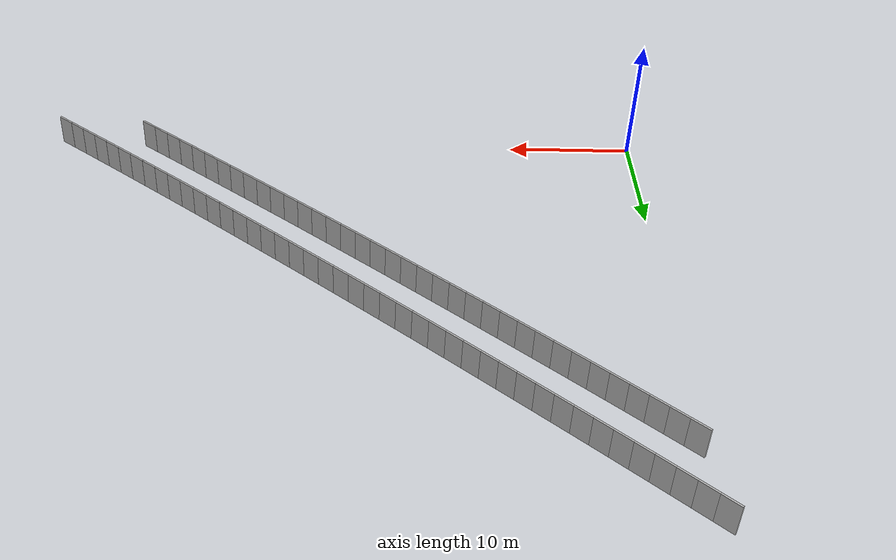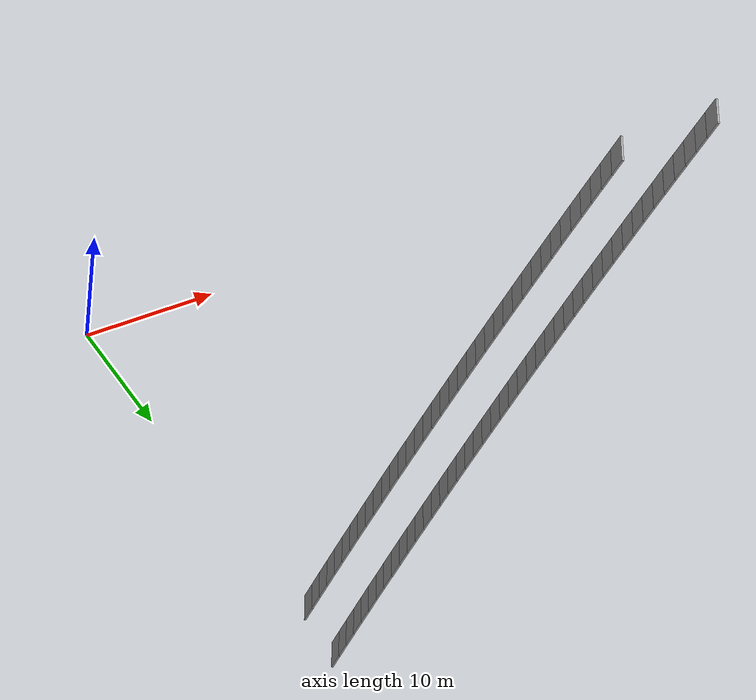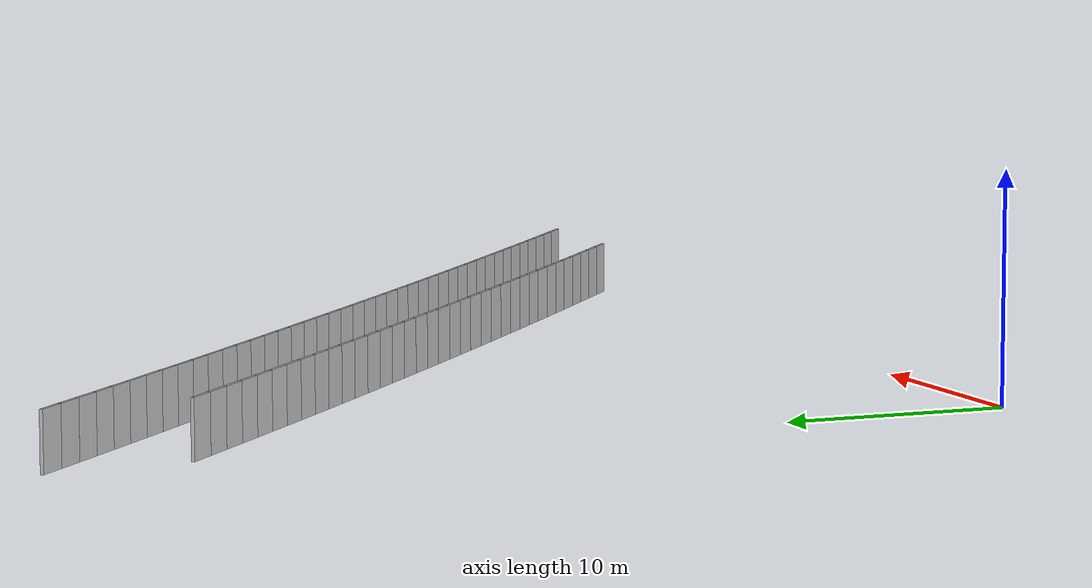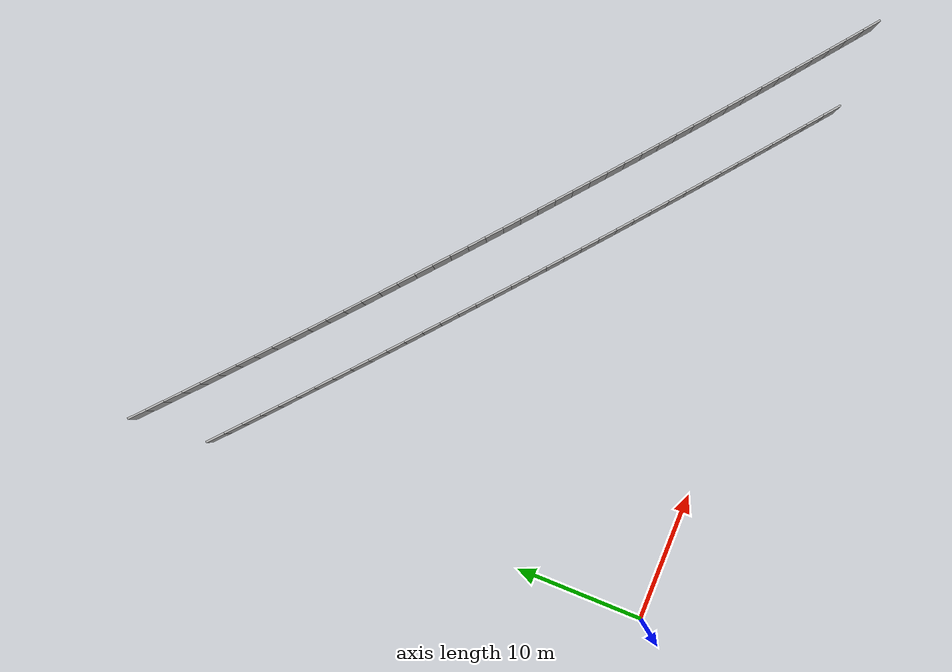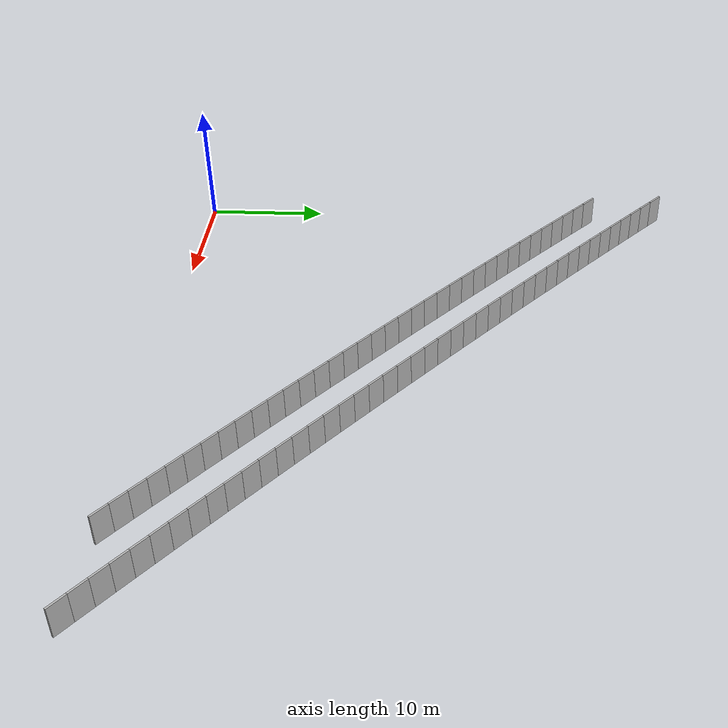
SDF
<?xml version="1.0" ?>
<sdf version="1.6">
  <model name="sps_1008">
    <pose frame="">0 0 0 0 -0 0</pose>
    <static>1</static>
    <self_collide>0</self_collide>
    <allow_auto_disable>0</allow_auto_disable>
    <link name="Wall8548">
      <kinematic>0</kinematic>
      <gravity>1</gravity>
      <self_collide>0</self_collide>
      <collision name="collision">
        <geometry>
          <box>
            <size>1.49907 0.15 2.5</size>
          </box>
        </geometry>
        <pose frame="">0 0 0 0 -0 0</pose>
      </collision>
      <visual name="visual">
        <geometry>
          <box>
            <size>1.49907 0.15 2.5</size>
          </box>
        </geometry>
        <pose frame="">0 0 0 0 -0 0</pose>
        <cast_shadows>1</cast_shadows>
        <transparency>0.0</transparency>
      </visual>
      <pose frame="">0.953452 34.6064 1.25 0 0 -0.729026</pose>
    </link>
    <link name="Wall8549">
      <kinematic>0</kinematic>
      <gravity>1</gravity>
      <self_collide>0</self_collide>
      <collision name="collision">
        <geometry>
          <box>
            <size>1.49885 0.15 2.5</size>
          </box>
        </geometry>
        <pose frame="">0 0 0 0 -0 0</pose>
      </collision>
      <visual name="visual">
        <geometry>
          <box>
            <size>1.49885 0.15 2.5</size>
          </box>
        </geometry>
        <pose frame="">0 0 0 0 -0 0</pose>
        <cast_shadows>1</cast_shadows>
        <transparency>0.0</transparency>
      </visual>
      <pose frame="">2.07217 33.6087 1.25 0 0 -0.727518</pose>
    </link>
    <link name="Wall8550">
      <kinematic>0</kinematic>
      <gravity>1</gravity>
      <self_collide>0</self_collide>
      <collision name="collision">
        <geometry>
          <box>
            <size>1.49905 0.15 2.5</size>
          </box>
        </geometry>
        <pose frame="">0 0 0 0 -0 0</pose>
      </collision>
      <visual name="visual">
        <geometry>
          <box>
            <size>1.49905 0.15 2.5</size>
          </box>
        </geometry>
        <pose frame="">0 0 0 0 -0 0</pose>
        <cast_shadows>1</cast_shadows>
        <transparency>0.0</transparency>
      </visual>
      <pose frame="">3.19247 32.6128 1.25 0 0 -0.725824</pose>
    </link>
    <link name="Wall8551">
      <kinematic>0</kinematic>
      <gravity>1</gravity>
      <self_collide>0</self_collide>
      <collision name="collision">
        <geometry>
          <box>
            <size>1.49888 0.15 2.5</size>
          </box>
        </geometry>
        <pose frame="">0 0 0 0 -0 0</pose>
      </collision>
      <visual name="visual">
        <geometry>
          <box>
            <size>1.49888 0.15 2.5</size>
          </box>
        </geometry>
        <pose frame="">0 0 0 0 -0 0</pose>
        <cast_shadows>1</cast_shadows>
        <transparency>0.0</transparency>
      </visual>
      <pose frame="">4.31435 31.6187 1.25 0 0 -0.724346</pose>
    </link>
    <link name="Wall8552">
      <kinematic>0</kinematic>
      <gravity>1</gravity>
      <self_collide>0</self_collide>
      <collision name="collision">
        <geometry>
          <box>
            <size>1.4989 0.15 2.5</size>
          </box>
        </geometry>
        <pose frame="">0 0 0 0 -0 0</pose>
      </collision>
      <visual name="visual">
        <geometry>
          <box>
            <size>1.4989 0.15 2.5</size>
          </box>
        </geometry>
        <pose frame="">0 0 0 0 -0 0</pose>
        <cast_shadows>1</cast_shadows>
        <transparency>0.0</transparency>
      </visual>
      <pose frame="">5.43774 30.6264 1.25 0 0 -0.722703</pose>
    </link>
    <link name="Wall8553">
      <kinematic>0</kinematic>
      <gravity>1</gravity>
      <self_collide>0</self_collide>
      <collision name="collision">
        <geometry>
          <box>
            <size>1.49904 0.15 2.5</size>
          </box>
        </geometry>
        <pose frame="">0 0 0 0 -0 0</pose>
      </collision>
      <visual name="visual">
        <geometry>
          <box>
            <size>1.49904 0.15 2.5</size>
          </box>
        </geometry>
        <pose frame="">0 0 0 0 -0 0</pose>
        <cast_shadows>1</cast_shadows>
        <transparency>0.0</transparency>
      </visual>
      <pose frame="">6.56274 29.6358 1.25 0 0 -0.721209</pose>
    </link>
    <link name="Wall8554">
      <kinematic>0</kinematic>
      <gravity>1</gravity>
      <self_collide>0</self_collide>
      <collision name="collision">
        <geometry>
          <box>
            <size>1.49877 0.15 2.5</size>
          </box>
        </geometry>
        <pose frame="">0 0 0 0 -0 0</pose>
      </collision>
      <visual name="visual">
        <geometry>
          <box>
            <size>1.49877 0.15 2.5</size>
          </box>
        </geometry>
        <pose frame="">0 0 0 0 -0 0</pose>
        <cast_shadows>1</cast_shadows>
        <transparency>0.0</transparency>
      </visual>
      <pose frame="">7.68923 28.647 1.25 0 0 -0.719581</pose>
    </link>
    <link name="Wall8555">
      <kinematic>0</kinematic>
      <gravity>1</gravity>
      <self_collide>0</self_collide>
      <collision name="collision">
        <geometry>
          <box>
            <size>1.4991 0.15 2.5</size>
          </box>
        </geometry>
        <pose frame="">0 0 0 0 -0 0</pose>
      </collision>
      <visual name="visual">
        <geometry>
          <box>
            <size>1.4991 0.15 2.5</size>
          </box>
        </geometry>
        <pose frame="">0 0 0 0 -0 0</pose>
        <cast_shadows>1</cast_shadows>
        <transparency>0.0</transparency>
      </visual>
      <pose frame="">8.81734 27.66 1.25 0 0 -0.71798</pose>
    </link>
    <link name="Wall8556">
      <kinematic>0</kinematic>
      <gravity>1</gravity>
      <self_collide>0</self_collide>
      <collision name="collision">
        <geometry>
          <box>
            <size>1.49879 0.15 2.5</size>
          </box>
        </geometry>
        <pose frame="">0 0 0 0 -0 0</pose>
      </collision>
      <visual name="visual">
        <geometry>
          <box>
            <size>1.49879 0.15 2.5</size>
          </box>
        </geometry>
        <pose frame="">0 0 0 0 -0 0</pose>
        <cast_shadows>1</cast_shadows>
        <transparency>0.0</transparency>
      </visual>
      <pose frame="">9.94704 26.6748 1.25 0 0 -0.716378</pose>
    </link>
    <link name="Wall8557">
      <kinematic>0</kinematic>
      <gravity>1</gravity>
      <self_collide>0</self_collide>
      <collision name="collision">
        <geometry>
          <box>
            <size>1.49913 0.15 2.5</size>
          </box>
        </geometry>
        <pose frame="">0 0 0 0 -0 0</pose>
      </collision>
      <visual name="visual">
        <geometry>
          <box>
            <size>1.49913 0.15 2.5</size>
          </box>
        </geometry>
        <pose frame="">0 0 0 0 -0 0</pose>
        <cast_shadows>1</cast_shadows>
        <transparency>0.0</transparency>
      </visual>
      <pose frame="">11.0783 25.6914 1.25 0 0 -0.714778</pose>
    </link>
    <link name="Wall8558">
      <kinematic>0</kinematic>
      <gravity>1</gravity>
      <self_collide>0</self_collide>
      <collision name="collision">
        <geometry>
          <box>
            <size>1.49885 0.15 2.5</size>
          </box>
        </geometry>
        <pose frame="">0 0 0 0 -0 0</pose>
      </collision>
      <visual name="visual">
        <geometry>
          <box>
            <size>1.49885 0.15 2.5</size>
          </box>
        </geometry>
        <pose frame="">0 0 0 0 -0 0</pose>
        <cast_shadows>1</cast_shadows>
        <transparency>0.0</transparency>
      </visual>
      <pose frame="">12.2111 24.7097 1.25 0 0 -0.713321</pose>
    </link>
    <link name="Wall8559">
      <kinematic>0</kinematic>
      <gravity>1</gravity>
      <self_collide>0</self_collide>
      <collision name="collision">
        <geometry>
          <box>
            <size>1.49904 0.15 2.5</size>
          </box>
        </geometry>
        <pose frame="">0 0 0 0 -0 0</pose>
      </collision>
      <visual name="visual">
        <geometry>
          <box>
            <size>1.49904 0.15 2.5</size>
          </box>
        </geometry>
        <pose frame="">0 0 0 0 -0 0</pose>
        <cast_shadows>1</cast_shadows>
        <transparency>0.0</transparency>
      </visual>
      <pose frame="">13.3455 23.7298 1.25 0 0 -0.711656</pose>
    </link>
    <link name="Wall8560">
      <kinematic>0</kinematic>
      <gravity>1</gravity>
      <self_collide>0</self_collide>
      <collision name="collision">
        <geometry>
          <box>
            <size>1.49895 0.15 2.5</size>
          </box>
        </geometry>
        <pose frame="">0 0 0 0 -0 0</pose>
      </collision>
      <visual name="visual">
        <geometry>
          <box>
            <size>1.49895 0.15 2.5</size>
          </box>
        </geometry>
        <pose frame="">0 0 0 0 -0 0</pose>
        <cast_shadows>1</cast_shadows>
        <transparency>0.0</transparency>
      </visual>
      <pose frame="">14.4813 22.7517 1.25 0 0 -0.71015</pose>
    </link>
    <link name="Wall8561">
      <kinematic>0</kinematic>
      <gravity>1</gravity>
      <self_collide>0</self_collide>
      <collision name="collision">
        <geometry>
          <box>
            <size>1.49882 0.15 2.5</size>
          </box>
        </geometry>
        <pose frame="">0 0 0 0 -0 0</pose>
      </collision>
      <visual name="visual">
        <geometry>
          <box>
            <size>1.49882 0.15 2.5</size>
          </box>
        </geometry>
        <pose frame="">0 0 0 0 -0 0</pose>
        <cast_shadows>1</cast_shadows>
        <transparency>0.0</transparency>
      </visual>
      <pose frame="">15.6186 21.7754 1.25 0 0 -0.708613</pose>
    </link>
    <link name="Wall8562">
      <kinematic>0</kinematic>
      <gravity>1</gravity>
      <self_collide>0</self_collide>
      <collision name="collision">
        <geometry>
          <box>
            <size>1.4989 0.15 2.5</size>
          </box>
        </geometry>
        <pose frame="">0 0 0 0 -0 0</pose>
      </collision>
      <visual name="visual">
        <geometry>
          <box>
            <size>1.4989 0.15 2.5</size>
          </box>
        </geometry>
        <pose frame="">0 0 0 0 -0 0</pose>
        <cast_shadows>1</cast_shadows>
        <transparency>0.0</transparency>
      </visual>
      <pose frame="">16.7576 20.801 1.25 0 0 -0.706798</pose>
    </link>
    <link name="Wall8563">
      <kinematic>0</kinematic>
      <gravity>1</gravity>
      <self_collide>0</self_collide>
      <collision name="collision">
        <geometry>
          <box>
            <size>1.49903 0.15 2.5</size>
          </box>
        </geometry>
        <pose frame="">0 0 0 0 -0 0</pose>
      </collision>
      <visual name="visual">
        <geometry>
          <box>
            <size>1.49903 0.15 2.5</size>
          </box>
        </geometry>
        <pose frame="">0 0 0 0 -0 0</pose>
        <cast_shadows>1</cast_shadows>
        <transparency>0.0</transparency>
      </visual>
      <pose frame="">17.8982 19.8284 1.25 0 0 -0.705332</pose>
    </link>
    <link name="Wall8564">
      <kinematic>0</kinematic>
      <gravity>1</gravity>
      <self_collide>0</self_collide>
      <collision name="collision">
        <geometry>
          <box>
            <size>1.49896 0.15 2.5</size>
          </box>
        </geometry>
        <pose frame="">0 0 0 0 -0 0</pose>
      </collision>
      <visual name="visual">
        <geometry>
          <box>
            <size>1.49896 0.15 2.5</size>
          </box>
        </geometry>
        <pose frame="">0 0 0 0 -0 0</pose>
        <cast_shadows>1</cast_shadows>
        <transparency>0.0</transparency>
      </visual>
      <pose frame="">19.0402 18.8575 1.25 0 0 -0.703768</pose>
    </link>
    <link name="Wall8565">
      <kinematic>0</kinematic>
      <gravity>1</gravity>
      <self_collide>0</self_collide>
      <collision name="collision">
        <geometry>
          <box>
            <size>1.49889 0.15 2.5</size>
          </box>
        </geometry>
        <pose frame="">0 0 0 0 -0 0</pose>
      </collision>
      <visual name="visual">
        <geometry>
          <box>
            <size>1.49889 0.15 2.5</size>
          </box>
        </geometry>
        <pose frame="">0 0 0 0 -0 0</pose>
        <cast_shadows>1</cast_shadows>
        <transparency>0.0</transparency>
      </visual>
      <pose frame="">20.1838 17.8884 1.25 0 0 -0.702262</pose>
    </link>
    <link name="Wall8566">
      <kinematic>0</kinematic>
      <gravity>1</gravity>
      <self_collide>0</self_collide>
      <collision name="collision">
        <geometry>
          <box>
            <size>1.4991 0.15 2.5</size>
          </box>
        </geometry>
        <pose frame="">0 0 0 0 -0 0</pose>
      </collision>
      <visual name="visual">
        <geometry>
          <box>
            <size>1.4991 0.15 2.5</size>
          </box>
        </geometry>
        <pose frame="">0 0 0 0 -0 0</pose>
        <cast_shadows>1</cast_shadows>
        <transparency>0.0</transparency>
      </visual>
      <pose frame="">21.3289 16.9211 1.25 0 0 -0.700598</pose>
    </link>
    <link name="Wall8567">
      <kinematic>0</kinematic>
      <gravity>1</gravity>
      <self_collide>0</self_collide>
      <collision name="collision">
        <geometry>
          <box>
            <size>1.49887 0.15 2.5</size>
          </box>
        </geometry>
        <pose frame="">0 0 0 0 -0 0</pose>
      </collision>
      <visual name="visual">
        <geometry>
          <box>
            <size>1.49887 0.15 2.5</size>
          </box>
        </geometry>
        <pose frame="">0 0 0 0 -0 0</pose>
        <cast_shadows>1</cast_shadows>
        <transparency>0.0</transparency>
      </visual>
      <pose frame="">22.4756 15.9557 1.25 0 0 -0.698967</pose>
    </link>
    <link name="Wall8568">
      <kinematic>0</kinematic>
      <gravity>1</gravity>
      <self_collide>0</self_collide>
      <collision name="collision">
        <geometry>
          <box>
            <size>1.49877 0.15 2.5</size>
          </box>
        </geometry>
        <pose frame="">0 0 0 0 -0 0</pose>
      </collision>
      <visual name="visual">
        <geometry>
          <box>
            <size>1.49877 0.15 2.5</size>
          </box>
        </geometry>
        <pose frame="">0 0 0 0 -0 0</pose>
        <cast_shadows>1</cast_shadows>
        <transparency>0.0</transparency>
      </visual>
      <pose frame="">23.6237 14.9922 1.25 0 0 -0.697429</pose>
    </link>
    <link name="Wall8569">
      <kinematic>0</kinematic>
      <gravity>1</gravity>
      <self_collide>0</self_collide>
      <collision name="collision">
        <geometry>
          <box>
            <size>1.49897 0.15 2.5</size>
          </box>
        </geometry>
        <pose frame="">0 0 0 0 -0 0</pose>
      </collision>
      <visual name="visual">
        <geometry>
          <box>
            <size>1.49897 0.15 2.5</size>
          </box>
        </geometry>
        <pose frame="">0 0 0 0 -0 0</pose>
        <cast_shadows>1</cast_shadows>
        <transparency>0.0</transparency>
      </visual>
      <pose frame="">24.7733 14.0304 1.25 0 0 -0.695937</pose>
    </link>
    <link name="Wall8570">
      <kinematic>0</kinematic>
      <gravity>1</gravity>
      <self_collide>0</self_collide>
      <collision name="collision">
        <geometry>
          <box>
            <size>1.4989 0.15 2.5</size>
          </box>
        </geometry>
        <pose frame="">0 0 0 0 -0 0</pose>
      </collision>
      <visual name="visual">
        <geometry>
          <box>
            <size>1.4989 0.15 2.5</size>
          </box>
        </geometry>
        <pose frame="">0 0 0 0 -0 0</pose>
        <cast_shadows>1</cast_shadows>
        <transparency>0.0</transparency>
      </visual>
      <pose frame="">25.9245 13.0704 1.25 0 0 -0.694227</pose>
    </link>
    <link name="Wall8571">
      <kinematic>0</kinematic>
      <gravity>1</gravity>
      <self_collide>0</self_collide>
      <collision name="collision">
        <geometry>
          <box>
            <size>1.49897 0.15 2.5</size>
          </box>
        </geometry>
        <pose frame="">0 0 0 0 -0 0</pose>
      </collision>
      <visual name="visual">
        <geometry>
          <box>
            <size>1.49897 0.15 2.5</size>
          </box>
        </geometry>
        <pose frame="">0 0 0 0 -0 0</pose>
        <cast_shadows>1</cast_shadows>
        <transparency>0.0</transparency>
      </visual>
      <pose frame="">27.0771 12.1122 1.25 0 0 -0.692815</pose>
    </link>
    <link name="Wall8572">
      <kinematic>0</kinematic>
      <gravity>1</gravity>
      <self_collide>0</self_collide>
      <collision name="collision">
        <geometry>
          <box>
            <size>1.49911 0.15 2.5</size>
          </box>
        </geometry>
        <pose frame="">0 0 0 0 -0 0</pose>
      </collision>
      <visual name="visual">
        <geometry>
          <box>
            <size>1.49911 0.15 2.5</size>
          </box>
        </geometry>
        <pose frame="">0 0 0 0 -0 0</pose>
        <cast_shadows>1</cast_shadows>
        <transparency>0.0</transparency>
      </visual>
      <pose frame="">28.2313 11.1557 1.25 0 0 -0.691204</pose>
    </link>
    <link name="Wall8573">
      <kinematic>0</kinematic>
      <gravity>1</gravity>
      <self_collide>0</self_collide>
      <collision name="collision">
        <geometry>
          <box>
            <size>1.49882 0.15 2.5</size>
          </box>
        </geometry>
        <pose frame="">0 0 0 0 -0 0</pose>
      </collision>
      <visual name="visual">
        <geometry>
          <box>
            <size>1.49882 0.15 2.5</size>
          </box>
        </geometry>
        <pose frame="">0 0 0 0 -0 0</pose>
        <cast_shadows>1</cast_shadows>
        <transparency>0.0</transparency>
      </visual>
      <pose frame="">29.387 10.2011 1.25 0 0 -0.689566</pose>
    </link>
    <link name="Wall8574">
      <kinematic>0</kinematic>
      <gravity>1</gravity>
      <self_collide>0</self_collide>
      <collision name="collision">
        <geometry>
          <box>
            <size>1.499 0.15 2.5</size>
          </box>
        </geometry>
        <pose frame="">0 0 0 0 -0 0</pose>
      </collision>
      <visual name="visual">
        <geometry>
          <box>
            <size>1.499 0.15 2.5</size>
          </box>
        </geometry>
        <pose frame="">0 0 0 0 -0 0</pose>
        <cast_shadows>1</cast_shadows>
        <transparency>0.0</transparency>
      </visual>
      <pose frame="">30.5442 9.2484 1.25 0 0 -0.687987</pose>
    </link>
    <link name="Wall8575">
      <kinematic>0</kinematic>
      <gravity>1</gravity>
      <self_collide>0</self_collide>
      <collision name="collision">
        <geometry>
          <box>
            <size>1.49877 0.15 2.5</size>
          </box>
        </geometry>
        <pose frame="">0 0 0 0 -0 0</pose>
      </collision>
      <visual name="visual">
        <geometry>
          <box>
            <size>1.49877 0.15 2.5</size>
          </box>
        </geometry>
        <pose frame="">0 0 0 0 -0 0</pose>
        <cast_shadows>1</cast_shadows>
        <transparency>0.0</transparency>
      </visual>
      <pose frame="">31.703 8.29759 1.25 0 0 -0.686323</pose>
    </link>
    <link name="Wall8576">
      <kinematic>0</kinematic>
      <gravity>1</gravity>
      <self_collide>0</self_collide>
      <collision name="collision">
        <geometry>
          <box>
            <size>1.49899 0.15 2.5</size>
          </box>
        </geometry>
        <pose frame="">0 0 0 0 -0 0</pose>
      </collision>
      <visual name="visual">
        <geometry>
          <box>
            <size>1.49899 0.15 2.5</size>
          </box>
        </geometry>
        <pose frame="">0 0 0 0 -0 0</pose>
        <cast_shadows>1</cast_shadows>
        <transparency>0.0</transparency>
      </visual>
      <pose frame="">32.8632 7.34859 1.25 0 0 -0.68489</pose>
    </link>
    <link name="Wall8577">
      <kinematic>0</kinematic>
      <gravity>1</gravity>
      <self_collide>0</self_collide>
      <collision name="collision">
        <geometry>
          <box>
            <size>1.499 0.15 2.5</size>
          </box>
        </geometry>
        <pose frame="">0 0 0 0 -0 0</pose>
      </collision>
      <visual name="visual">
        <geometry>
          <box>
            <size>1.499 0.15 2.5</size>
          </box>
        </geometry>
        <pose frame="">0 0 0 0 -0 0</pose>
        <cast_shadows>1</cast_shadows>
        <transparency>0.0</transparency>
      </visual>
      <pose frame="">34.025 6.40138 1.25 0 0 -0.683097</pose>
    </link>
    <link name="Wall8578">
      <kinematic>0</kinematic>
      <gravity>1</gravity>
      <self_collide>0</self_collide>
      <collision name="collision">
        <geometry>
          <box>
            <size>1.49904 0.15 2.5</size>
          </box>
        </geometry>
        <pose frame="">0 0 0 0 -0 0</pose>
      </collision>
      <visual name="visual">
        <geometry>
          <box>
            <size>1.49904 0.15 2.5</size>
          </box>
        </geometry>
        <pose frame="">0 0 0 0 -0 0</pose>
        <cast_shadows>1</cast_shadows>
        <transparency>0.0</transparency>
      </visual>
      <pose frame="">35.1883 5.45601 1.25 0 0 -0.68171</pose>
    </link>
    <link name="Wall8579">
      <kinematic>0</kinematic>
      <gravity>1</gravity>
      <self_collide>0</self_collide>
      <collision name="collision">
        <geometry>
          <box>
            <size>1.49886 0.15 2.5</size>
          </box>
        </geometry>
        <pose frame="">0 0 0 0 -0 0</pose>
      </collision>
      <visual name="visual">
        <geometry>
          <box>
            <size>1.49886 0.15 2.5</size>
          </box>
        </geometry>
        <pose frame="">0 0 0 0 -0 0</pose>
        <cast_shadows>1</cast_shadows>
        <transparency>0.0</transparency>
      </visual>
      <pose frame="">36.353 4.5124 1.25 0 0 -0.680134</pose>
    </link>
    <link name="Wall8580">
      <kinematic>0</kinematic>
      <gravity>1</gravity>
      <self_collide>0</self_collide>
      <collision name="collision">
        <geometry>
          <box>
            <size>1.49892 0.15 2.5</size>
          </box>
        </geometry>
        <pose frame="">0 0 0 0 -0 0</pose>
      </collision>
      <visual name="visual">
        <geometry>
          <box>
            <size>1.49892 0.15 2.5</size>
          </box>
        </geometry>
        <pose frame="">0 0 0 0 -0 0</pose>
        <cast_shadows>1</cast_shadows>
        <transparency>0.0</transparency>
      </visual>
      <pose frame="">37.5192 3.57078 1.25 0 0 -0.678372</pose>
    </link>
    <link name="Wall8581">
      <kinematic>0</kinematic>
      <gravity>1</gravity>
      <self_collide>0</self_collide>
      <collision name="collision">
        <geometry>
          <box>
            <size>1.49893 0.15 2.5</size>
          </box>
        </geometry>
        <pose frame="">0 0 0 0 -0 0</pose>
      </collision>
      <visual name="visual">
        <geometry>
          <box>
            <size>1.49893 0.15 2.5</size>
          </box>
        </geometry>
        <pose frame="">0 0 0 0 -0 0</pose>
        <cast_shadows>1</cast_shadows>
        <transparency>0.0</transparency>
      </visual>
      <pose frame="">38.6869 2.631 1.25 0 0 -0.676954</pose>
    </link>
    <link name="Wall8582">
      <kinematic>0</kinematic>
      <gravity>1</gravity>
      <self_collide>0</self_collide>
      <collision name="collision">
        <geometry>
          <box>
            <size>1.49906 0.15 2.5</size>
          </box>
        </geometry>
        <pose frame="">0 0 0 0 -0 0</pose>
      </collision>
      <visual name="visual">
        <geometry>
          <box>
            <size>1.49906 0.15 2.5</size>
          </box>
        </geometry>
        <pose frame="">0 0 0 0 -0 0</pose>
        <cast_shadows>1</cast_shadows>
        <transparency>0.0</transparency>
      </visual>
      <pose frame="">39.8561 1.69292 1.25 0 0 -0.67537</pose>
    </link>
    <link name="Wall8583">
      <kinematic>0</kinematic>
      <gravity>1</gravity>
      <self_collide>0</self_collide>
      <collision name="collision">
        <geometry>
          <box>
            <size>1.49894 0.15 2.5</size>
          </box>
        </geometry>
        <pose frame="">0 0 0 0 -0 0</pose>
      </collision>
      <visual name="visual">
        <geometry>
          <box>
            <size>1.49894 0.15 2.5</size>
          </box>
        </geometry>
        <pose frame="">0 0 0 0 -0 0</pose>
        <cast_shadows>1</cast_shadows>
        <transparency>0.0</transparency>
      </visual>
      <pose frame="">41.0268 0.756698 1.25 0 0 -0.673768</pose>
    </link>
    <link name="Wall9626">
      <kinematic>0</kinematic>
      <gravity>1</gravity>
      <self_collide>0</self_collide>
      <collision name="collision">
        <geometry>
          <box>
            <size>1.49242 0.15 2.5</size>
          </box>
        </geometry>
        <pose frame="">0 0 0 0 -0 0</pose>
      </collision>
      <visual name="visual">
        <geometry>
          <box>
            <size>1.49242 0.15 2.5</size>
          </box>
        </geometry>
        <pose frame="">0 0 0 0 -0 0</pose>
        <cast_shadows>1</cast_shadows>
        <transparency>0.0</transparency>
      </visual>
      <pose frame="">0.379234 40.6848 1.25 0 0 -0.733727</pose>
    </link>
    <link name="Wall9627">
      <kinematic>0</kinematic>
      <gravity>1</gravity>
      <self_collide>0</self_collide>
      <collision name="collision">
        <geometry>
          <box>
            <size>1.4924 0.15 2.5</size>
          </box>
        </geometry>
        <pose frame="">0 0 0 0 -0 0</pose>
      </collision>
      <visual name="visual">
        <geometry>
          <box>
            <size>1.4924 0.15 2.5</size>
          </box>
        </geometry>
        <pose frame="">0 0 0 0 -0 0</pose>
        <cast_shadows>1</cast_shadows>
        <transparency>0.0</transparency>
      </visual>
      <pose frame="">1.48833 39.6862 1.25 0 0 -0.732307</pose>
    </link>
    <link name="Wall9628">
      <kinematic>0</kinematic>
      <gravity>1</gravity>
      <self_collide>0</self_collide>
      <collision name="collision">
        <geometry>
          <box>
            <size>1.49242 0.15 2.5</size>
          </box>
        </geometry>
        <pose frame="">0 0 0 0 -0 0</pose>
      </collision>
      <visual name="visual">
        <geometry>
          <box>
            <size>1.49242 0.15 2.5</size>
          </box>
        </geometry>
        <pose frame="">0 0 0 0 -0 0</pose>
        <cast_shadows>1</cast_shadows>
        <transparency>0.0</transparency>
      </visual>
      <pose frame="">2.59905 38.6894 1.25 0 0 -0.730484</pose>
    </link>
    <link name="Wall9629">
      <kinematic>0</kinematic>
      <gravity>1</gravity>
      <self_collide>0</self_collide>
      <collision name="collision">
        <geometry>
          <box>
            <size>1.49236 0.15 2.5</size>
          </box>
        </geometry>
        <pose frame="">0 0 0 0 -0 0</pose>
      </collision>
      <visual name="visual">
        <geometry>
          <box>
            <size>1.49236 0.15 2.5</size>
          </box>
        </geometry>
        <pose frame="">0 0 0 0 -0 0</pose>
        <cast_shadows>1</cast_shadows>
        <transparency>0.0</transparency>
      </visual>
      <pose frame="">3.71136 37.6944 1.25 0 0 -0.729091</pose>
    </link>
    <link name="Wall9630">
      <kinematic>0</kinematic>
      <gravity>1</gravity>
      <self_collide>0</self_collide>
      <collision name="collision">
        <geometry>
          <box>
            <size>1.49238 0.15 2.5</size>
          </box>
        </geometry>
        <pose frame="">0 0 0 0 -0 0</pose>
      </collision>
      <visual name="visual">
        <geometry>
          <box>
            <size>1.49238 0.15 2.5</size>
          </box>
        </geometry>
        <pose frame="">0 0 0 0 -0 0</pose>
        <cast_shadows>1</cast_shadows>
        <transparency>0.0</transparency>
      </visual>
      <pose frame="">4.82516 36.7011 1.25 0 0 -0.72744</pose>
    </link>
    <link name="Wall9631">
      <kinematic>0</kinematic>
      <gravity>1</gravity>
      <self_collide>0</self_collide>
      <collision name="collision">
        <geometry>
          <box>
            <size>1.49237 0.15 2.5</size>
          </box>
        </geometry>
        <pose frame="">0 0 0 0 -0 0</pose>
      </collision>
      <visual name="visual">
        <geometry>
          <box>
            <size>1.49237 0.15 2.5</size>
          </box>
        </geometry>
        <pose frame="">0 0 0 0 -0 0</pose>
        <cast_shadows>1</cast_shadows>
        <transparency>0.0</transparency>
      </visual>
      <pose frame="">5.94045 35.7095 1.25 0 0 -0.726079</pose>
    </link>
    <link name="Wall9632">
      <kinematic>0</kinematic>
      <gravity>1</gravity>
      <self_collide>0</self_collide>
      <collision name="collision">
        <geometry>
          <box>
            <size>1.49248 0.15 2.5</size>
          </box>
        </geometry>
        <pose frame="">0 0 0 0 -0 0</pose>
      </collision>
      <visual name="visual">
        <geometry>
          <box>
            <size>1.49248 0.15 2.5</size>
          </box>
        </geometry>
        <pose frame="">0 0 0 0 -0 0</pose>
        <cast_shadows>1</cast_shadows>
        <transparency>0.0</transparency>
      </visual>
      <pose frame="">7.05733 34.7196 1.25 0 0 -0.724316</pose>
    </link>
    <link name="Wall9633">
      <kinematic>0</kinematic>
      <gravity>1</gravity>
      <self_collide>0</self_collide>
      <collision name="collision">
        <geometry>
          <box>
            <size>1.49242 0.15 2.5</size>
          </box>
        </geometry>
        <pose frame="">0 0 0 0 -0 0</pose>
      </collision>
      <visual name="visual">
        <geometry>
          <box>
            <size>1.49242 0.15 2.5</size>
          </box>
        </geometry>
        <pose frame="">0 0 0 0 -0 0</pose>
        <cast_shadows>1</cast_shadows>
        <transparency>0.0</transparency>
      </visual>
      <pose frame="">8.17596 33.7316 1.25 0 0 -0.722604</pose>
    </link>
    <link name="Wall9634">
      <kinematic>0</kinematic>
      <gravity>1</gravity>
      <self_collide>0</self_collide>
      <collision name="collision">
        <geometry>
          <box>
            <size>1.49238 0.15 2.5</size>
          </box>
        </geometry>
        <pose frame="">0 0 0 0 -0 0</pose>
      </collision>
      <visual name="visual">
        <geometry>
          <box>
            <size>1.49238 0.15 2.5</size>
          </box>
        </geometry>
        <pose frame="">0 0 0 0 -0 0</pose>
        <cast_shadows>1</cast_shadows>
        <transparency>0.0</transparency>
      </visual>
      <pose frame="">9.29607 32.7454 1.25 0 0 -0.721212</pose>
    </link>
    <link name="Wall9635">
      <kinematic>0</kinematic>
      <gravity>1</gravity>
      <self_collide>0</self_collide>
      <collision name="collision">
        <geometry>
          <box>
            <size>1.49237 0.15 2.5</size>
          </box>
        </geometry>
        <pose frame="">0 0 0 0 -0 0</pose>
      </collision>
      <visual name="visual">
        <geometry>
          <box>
            <size>1.49237 0.15 2.5</size>
          </box>
        </geometry>
        <pose frame="">0 0 0 0 -0 0</pose>
        <cast_shadows>1</cast_shadows>
        <transparency>0.0</transparency>
      </visual>
      <pose frame="">10.4177 31.7609 1.25 0 0 -0.719588</pose>
    </link>
    <link name="Wall9636">
      <kinematic>0</kinematic>
      <gravity>1</gravity>
      <self_collide>0</self_collide>
      <collision name="collision">
        <geometry>
          <box>
            <size>1.49258 0.15 2.5</size>
          </box>
        </geometry>
        <pose frame="">0 0 0 0 -0 0</pose>
      </collision>
      <visual name="visual">
        <geometry>
          <box>
            <size>1.49258 0.15 2.5</size>
          </box>
        </geometry>
        <pose frame="">0 0 0 0 -0 0</pose>
        <cast_shadows>1</cast_shadows>
        <transparency>0.0</transparency>
      </visual>
      <pose frame="">11.5409 30.7782 1.25 0 0 -0.717888</pose>
    </link>
    <link name="Wall9637">
      <kinematic>0</kinematic>
      <gravity>1</gravity>
      <self_collide>0</self_collide>
      <collision name="collision">
        <geometry>
          <box>
            <size>1.49234 0.15 2.5</size>
          </box>
        </geometry>
        <pose frame="">0 0 0 0 -0 0</pose>
      </collision>
      <visual name="visual">
        <geometry>
          <box>
            <size>1.49234 0.15 2.5</size>
          </box>
        </geometry>
        <pose frame="">0 0 0 0 -0 0</pose>
        <cast_shadows>1</cast_shadows>
        <transparency>0.0</transparency>
      </visual>
      <pose frame="">12.6658 29.7973 1.25 0 0 -0.716456</pose>
    </link>
    <link name="Wall9638">
      <kinematic>0</kinematic>
      <gravity>1</gravity>
      <self_collide>0</self_collide>
      <collision name="collision">
        <geometry>
          <box>
            <size>1.49241 0.15 2.5</size>
          </box>
        </geometry>
        <pose frame="">0 0 0 0 -0 0</pose>
      </collision>
      <visual name="visual">
        <geometry>
          <box>
            <size>1.49241 0.15 2.5</size>
          </box>
        </geometry>
        <pose frame="">0 0 0 0 -0 0</pose>
        <cast_shadows>1</cast_shadows>
        <transparency>0.0</transparency>
      </visual>
      <pose frame="">13.792 28.8181 1.25 0 0 -0.714952</pose>
    </link>
    <link name="Wall9639">
      <kinematic>0</kinematic>
      <gravity>1</gravity>
      <self_collide>0</self_collide>
      <collision name="collision">
        <geometry>
          <box>
            <size>1.49233 0.15 2.5</size>
          </box>
        </geometry>
        <pose frame="">0 0 0 0 -0 0</pose>
      </collision>
      <visual name="visual">
        <geometry>
          <box>
            <size>1.49233 0.15 2.5</size>
          </box>
        </geometry>
        <pose frame="">0 0 0 0 -0 0</pose>
        <cast_shadows>1</cast_shadows>
        <transparency>0.0</transparency>
      </visual>
      <pose frame="">14.9197 27.8407 1.25 0 0 -0.713209</pose>
    </link>
    <link name="Wall9640">
      <kinematic>0</kinematic>
      <gravity>1</gravity>
      <self_collide>0</self_collide>
      <collision name="collision">
        <geometry>
          <box>
            <size>1.49224 0.15 2.5</size>
          </box>
        </geometry>
        <pose frame="">0 0 0 0 -0 0</pose>
      </collision>
      <visual name="visual">
        <geometry>
          <box>
            <size>1.49224 0.15 2.5</size>
          </box>
        </geometry>
        <pose frame="">0 0 0 0 -0 0</pose>
        <cast_shadows>1</cast_shadows>
        <transparency>0.0</transparency>
      </visual>
      <pose frame="">16.049 26.8652 1.25 0 0 -0.711696</pose>
    </link>
    <link name="Wall9641">
      <kinematic>0</kinematic>
      <gravity>1</gravity>
      <self_collide>0</self_collide>
      <collision name="collision">
        <geometry>
          <box>
            <size>1.49255 0.15 2.5</size>
          </box>
        </geometry>
        <pose frame="">0 0 0 0 -0 0</pose>
      </collision>
      <visual name="visual">
        <geometry>
          <box>
            <size>1.49255 0.15 2.5</size>
          </box>
        </geometry>
        <pose frame="">0 0 0 0 -0 0</pose>
        <cast_shadows>1</cast_shadows>
        <transparency>0.0</transparency>
      </visual>
      <pose frame="">17.18 25.8914 1.25 0 0 -0.710059</pose>
    </link>
    <link name="Wall9642">
      <kinematic>0</kinematic>
      <gravity>1</gravity>
      <self_collide>0</self_collide>
      <collision name="collision">
        <geometry>
          <box>
            <size>1.49246 0.15 2.5</size>
          </box>
        </geometry>
        <pose frame="">0 0 0 0 -0 0</pose>
      </collision>
      <visual name="visual">
        <geometry>
          <box>
            <size>1.49246 0.15 2.5</size>
          </box>
        </geometry>
        <pose frame="">0 0 0 0 -0 0</pose>
        <cast_shadows>1</cast_shadows>
        <transparency>0.0</transparency>
      </visual>
      <pose frame="">18.3125 24.9193 1.25 0 0 -0.708604</pose>
    </link>
    <link name="Wall9643">
      <kinematic>0</kinematic>
      <gravity>1</gravity>
      <self_collide>0</self_collide>
      <collision name="collision">
        <geometry>
          <box>
            <size>1.49236 0.15 2.5</size>
          </box>
        </geometry>
        <pose frame="">0 0 0 0 -0 0</pose>
      </collision>
      <visual name="visual">
        <geometry>
          <box>
            <size>1.49236 0.15 2.5</size>
          </box>
        </geometry>
        <pose frame="">0 0 0 0 -0 0</pose>
        <cast_shadows>1</cast_shadows>
        <transparency>0.0</transparency>
      </visual>
      <pose frame="">19.4465 23.9491 1.25 0 0 -0.70683</pose>
    </link>
    <link name="Wall9644">
      <kinematic>0</kinematic>
      <gravity>1</gravity>
      <self_collide>0</self_collide>
      <collision name="collision">
        <geometry>
          <box>
            <size>1.49249 0.15 2.5</size>
          </box>
        </geometry>
        <pose frame="">0 0 0 0 -0 0</pose>
      </collision>
      <visual name="visual">
        <geometry>
          <box>
            <size>1.49249 0.15 2.5</size>
          </box>
        </geometry>
        <pose frame="">0 0 0 0 -0 0</pose>
        <cast_shadows>1</cast_shadows>
        <transparency>0.0</transparency>
      </visual>
      <pose frame="">20.5821 22.9807 1.25 0 0 -0.705357</pose>
    </link>
    <link name="Wall9645">
      <kinematic>0</kinematic>
      <gravity>1</gravity>
      <self_collide>0</self_collide>
      <collision name="collision">
        <geometry>
          <box>
            <size>1.49246 0.15 2.5</size>
          </box>
        </geometry>
        <pose frame="">0 0 0 0 -0 0</pose>
      </collision>
      <visual name="visual">
        <geometry>
          <box>
            <size>1.49246 0.15 2.5</size>
          </box>
        </geometry>
        <pose frame="">0 0 0 0 -0 0</pose>
        <cast_shadows>1</cast_shadows>
        <transparency>0.0</transparency>
      </visual>
      <pose frame="">21.7191 22.014 1.25 0 0 -0.703818</pose>
    </link>
    <link name="Wall9646">
      <kinematic>0</kinematic>
      <gravity>1</gravity>
      <self_collide>0</self_collide>
      <collision name="collision">
        <geometry>
          <box>
            <size>1.49223 0.15 2.5</size>
          </box>
        </geometry>
        <pose frame="">0 0 0 0 -0 0</pose>
      </collision>
      <visual name="visual">
        <geometry>
          <box>
            <size>1.49223 0.15 2.5</size>
          </box>
        </geometry>
        <pose frame="">0 0 0 0 -0 0</pose>
        <cast_shadows>1</cast_shadows>
        <transparency>0.0</transparency>
      </visual>
      <pose frame="">22.8577 21.0492 1.25 0 0 -0.70218</pose>
    </link>
    <link name="Wall9647">
      <kinematic>0</kinematic>
      <gravity>1</gravity>
      <self_collide>0</self_collide>
      <collision name="collision">
        <geometry>
          <box>
            <size>1.49252 0.15 2.5</size>
          </box>
        </geometry>
        <pose frame="">0 0 0 0 -0 0</pose>
      </collision>
      <visual name="visual">
        <geometry>
          <box>
            <size>1.49252 0.15 2.5</size>
          </box>
        </geometry>
        <pose frame="">0 0 0 0 -0 0</pose>
        <cast_shadows>1</cast_shadows>
        <transparency>0.0</transparency>
      </visual>
      <pose frame="">23.9978 20.0862 1.25 0 0 -0.700571</pose>
    </link>
    <link name="Wall9648">
      <kinematic>0</kinematic>
      <gravity>1</gravity>
      <self_collide>0</self_collide>
      <collision name="collision">
        <geometry>
          <box>
            <size>1.49249 0.15 2.5</size>
          </box>
        </geometry>
        <pose frame="">0 0 0 0 -0 0</pose>
      </collision>
      <visual name="visual">
        <geometry>
          <box>
            <size>1.49249 0.15 2.5</size>
          </box>
        </geometry>
        <pose frame="">0 0 0 0 -0 0</pose>
        <cast_shadows>1</cast_shadows>
        <transparency>0.0</transparency>
      </visual>
      <pose frame="">25.1395 19.1249 1.25 0 0 -0.699089</pose>
    </link>
    <link name="Wall9649">
      <kinematic>0</kinematic>
      <gravity>1</gravity>
      <self_collide>0</self_collide>
      <collision name="collision">
        <geometry>
          <box>
            <size>1.49223 0.15 2.5</size>
          </box>
        </geometry>
        <pose frame="">0 0 0 0 -0 0</pose>
      </collision>
      <visual name="visual">
        <geometry>
          <box>
            <size>1.49223 0.15 2.5</size>
          </box>
        </geometry>
        <pose frame="">0 0 0 0 -0 0</pose>
        <cast_shadows>1</cast_shadows>
        <transparency>0.0</transparency>
      </visual>
      <pose frame="">26.2826 18.1655 1.25 0 0 -0.69742</pose>
    </link>
    <link name="Wall9650">
      <kinematic>0</kinematic>
      <gravity>1</gravity>
      <self_collide>0</self_collide>
      <collision name="collision">
        <geometry>
          <box>
            <size>1.49243 0.15 2.5</size>
          </box>
        </geometry>
        <pose frame="">0 0 0 0 -0 0</pose>
      </collision>
      <visual name="visual">
        <geometry>
          <box>
            <size>1.49243 0.15 2.5</size>
          </box>
        </geometry>
        <pose frame="">0 0 0 0 -0 0</pose>
        <cast_shadows>1</cast_shadows>
        <transparency>0.0</transparency>
      </visual>
      <pose frame="">27.4271 17.2079 1.25 0 0 -0.695922</pose>
    </link>
    <link name="Wall9651">
      <kinematic>0</kinematic>
      <gravity>1</gravity>
      <self_collide>0</self_collide>
      <collision name="collision">
        <geometry>
          <box>
            <size>1.49245 0.15 2.5</size>
          </box>
        </geometry>
        <pose frame="">0 0 0 0 -0 0</pose>
      </collision>
      <visual name="visual">
        <geometry>
          <box>
            <size>1.49245 0.15 2.5</size>
          </box>
        </geometry>
        <pose frame="">0 0 0 0 -0 0</pose>
        <cast_shadows>1</cast_shadows>
        <transparency>0.0</transparency>
      </visual>
      <pose frame="">28.5734 16.2521 1.25 0 0 -0.694209</pose>
    </link>
    <link name="Wall9652">
      <kinematic>0</kinematic>
      <gravity>1</gravity>
      <self_collide>0</self_collide>
      <collision name="collision">
        <geometry>
          <box>
            <size>1.49231 0.15 2.5</size>
          </box>
        </geometry>
        <pose frame="">0 0 0 0 -0 0</pose>
      </collision>
      <visual name="visual">
        <geometry>
          <box>
            <size>1.49231 0.15 2.5</size>
          </box>
        </geometry>
        <pose frame="">0 0 0 0 -0 0</pose>
        <cast_shadows>1</cast_shadows>
        <transparency>0.0</transparency>
      </visual>
      <pose frame="">29.7211 15.2982 1.25 0 0 -0.692691</pose>
    </link>
    <link name="Wall9653">
      <kinematic>0</kinematic>
      <gravity>1</gravity>
      <self_collide>0</self_collide>
      <collision name="collision">
        <geometry>
          <box>
            <size>1.49241 0.15 2.5</size>
          </box>
        </geometry>
        <pose frame="">0 0 0 0 -0 0</pose>
      </collision>
      <visual name="visual">
        <geometry>
          <box>
            <size>1.49241 0.15 2.5</size>
          </box>
        </geometry>
        <pose frame="">0 0 0 0 -0 0</pose>
        <cast_shadows>1</cast_shadows>
        <transparency>0.0</transparency>
      </visual>
      <pose frame="">30.8703 14.3461 1.25 0 0 -0.691041</pose>
    </link>
    <link name="Wall9654">
      <kinematic>0</kinematic>
      <gravity>1</gravity>
      <self_collide>0</self_collide>
      <collision name="collision">
        <geometry>
          <box>
            <size>1.49243 0.15 2.5</size>
          </box>
        </geometry>
        <pose frame="">0 0 0 0 -0 0</pose>
      </collision>
      <visual name="visual">
        <geometry>
          <box>
            <size>1.49243 0.15 2.5</size>
          </box>
        </geometry>
        <pose frame="">0 0 0 0 -0 0</pose>
        <cast_shadows>1</cast_shadows>
        <transparency>0.0</transparency>
      </visual>
      <pose frame="">32.021 13.3957 1.25 0 0 -0.689649</pose>
    </link>
    <link name="Wall9655">
      <kinematic>0</kinematic>
      <gravity>1</gravity>
      <self_collide>0</self_collide>
      <collision name="collision">
        <geometry>
          <box>
            <size>1.49232 0.15 2.5</size>
          </box>
        </geometry>
        <pose frame="">0 0 0 0 -0 0</pose>
      </collision>
      <visual name="visual">
        <geometry>
          <box>
            <size>1.49232 0.15 2.5</size>
          </box>
        </geometry>
        <pose frame="">0 0 0 0 -0 0</pose>
        <cast_shadows>1</cast_shadows>
        <transparency>0.0</transparency>
      </visual>
      <pose frame="">33.1731 12.4471 1.25 0 0 -0.688014</pose>
    </link>
    <link name="Wall9656">
      <kinematic>0</kinematic>
      <gravity>1</gravity>
      <self_collide>0</self_collide>
      <collision name="collision">
        <geometry>
          <box>
            <size>1.49253 0.15 2.5</size>
          </box>
        </geometry>
        <pose frame="">0 0 0 0 -0 0</pose>
      </collision>
      <visual name="visual">
        <geometry>
          <box>
            <size>1.49253 0.15 2.5</size>
          </box>
        </geometry>
        <pose frame="">0 0 0 0 -0 0</pose>
        <cast_shadows>1</cast_shadows>
        <transparency>0.0</transparency>
      </visual>
      <pose frame="">34.3268 11.5004 1.25 0 0 -0.686314</pose>
    </link>
    <link name="Wall9657">
      <kinematic>0</kinematic>
      <gravity>1</gravity>
      <self_collide>0</self_collide>
      <collision name="collision">
        <geometry>
          <box>
            <size>1.49227 0.15 2.5</size>
          </box>
        </geometry>
        <pose frame="">0 0 0 0 -0 0</pose>
      </collision>
      <visual name="visual">
        <geometry>
          <box>
            <size>1.49227 0.15 2.5</size>
          </box>
        </geometry>
        <pose frame="">0 0 0 0 -0 0</pose>
        <cast_shadows>1</cast_shadows>
        <transparency>0.0</transparency>
      </visual>
      <pose frame="">35.482 10.5555 1.25 0 0 -0.684872</pose>
    </link>
    <link name="Wall9658">
      <kinematic>0</kinematic>
      <gravity>1</gravity>
      <self_collide>0</self_collide>
      <collision name="collision">
        <geometry>
          <box>
            <size>1.49243 0.15 2.5</size>
          </box>
        </geometry>
        <pose frame="">0 0 0 0 -0 0</pose>
      </collision>
      <visual name="visual">
        <geometry>
          <box>
            <size>1.49243 0.15 2.5</size>
          </box>
        </geometry>
        <pose frame="">0 0 0 0 -0 0</pose>
        <cast_shadows>1</cast_shadows>
        <transparency>0.0</transparency>
      </visual>
      <pose frame="">36.6385 9.61241 1.25 0 0 -0.683255</pose>
    </link>
    <link name="Wall9659">
      <kinematic>0</kinematic>
      <gravity>1</gravity>
      <self_collide>0</self_collide>
      <collision name="collision">
        <geometry>
          <box>
            <size>1.49254 0.15 2.5</size>
          </box>
        </geometry>
        <pose frame="">0 0 0 0 -0 0</pose>
      </collision>
      <visual name="visual">
        <geometry>
          <box>
            <size>1.49254 0.15 2.5</size>
          </box>
        </geometry>
        <pose frame="">0 0 0 0 -0 0</pose>
        <cast_shadows>1</cast_shadows>
        <transparency>0.0</transparency>
      </visual>
      <pose frame="">37.7967 8.6711 1.25 0 0 -0.681664</pose>
    </link>
    <link name="Wall9660">
      <kinematic>0</kinematic>
      <gravity>1</gravity>
      <self_collide>0</self_collide>
      <collision name="collision">
        <geometry>
          <box>
            <size>1.49236 0.15 2.5</size>
          </box>
        </geometry>
        <pose frame="">0 0 0 0 -0 0</pose>
      </collision>
      <visual name="visual">
        <geometry>
          <box>
            <size>1.49236 0.15 2.5</size>
          </box>
        </geometry>
        <pose frame="">0 0 0 0 -0 0</pose>
        <cast_shadows>1</cast_shadows>
        <transparency>0.0</transparency>
      </visual>
      <pose frame="">38.9564 7.73167 1.25 0 0 -0.680023</pose>
    </link>
    <link name="Wall9661">
      <kinematic>0</kinematic>
      <gravity>1</gravity>
      <self_collide>0</self_collide>
      <collision name="collision">
        <geometry>
          <box>
            <size>1.49242 0.15 2.5</size>
          </box>
        </geometry>
        <pose frame="">0 0 0 0 -0 0</pose>
      </collision>
      <visual name="visual">
        <geometry>
          <box>
            <size>1.49242 0.15 2.5</size>
          </box>
        </geometry>
        <pose frame="">0 0 0 0 -0 0</pose>
        <cast_shadows>1</cast_shadows>
        <transparency>0.0</transparency>
      </visual>
      <pose frame="">40.1175 6.79408 1.25 0 0 -0.678573</pose>
    </link>
    <link name="Wall9662">
      <kinematic>0</kinematic>
      <gravity>1</gravity>
      <self_collide>0</self_collide>
      <collision name="collision">
        <geometry>
          <box>
            <size>1.49243 0.15 2.5</size>
          </box>
        </geometry>
        <pose frame="">0 0 0 0 -0 0</pose>
      </collision>
      <visual name="visual">
        <geometry>
          <box>
            <size>1.49243 0.15 2.5</size>
          </box>
        </geometry>
        <pose frame="">0 0 0 0 -0 0</pose>
        <cast_shadows>1</cast_shadows>
        <transparency>0.0</transparency>
      </visual>
      <pose frame="">41.2801 5.85829 1.25 0 0 -0.676887</pose>
    </link>
    <link name="Wall9663">
      <kinematic>0</kinematic>
      <gravity>1</gravity>
      <self_collide>0</self_collide>
      <collision name="collision">
        <geometry>
          <box>
            <size>1.49238 0.15 2.5</size>
          </box>
        </geometry>
        <pose frame="">0 0 0 0 -0 0</pose>
      </collision>
      <visual name="visual">
        <geometry>
          <box>
            <size>1.49238 0.15 2.5</size>
          </box>
        </geometry>
        <pose frame="">0 0 0 0 -0 0</pose>
        <cast_shadows>1</cast_shadows>
        <transparency>0.0</transparency>
      </visual>
      <pose frame="">42.4442 4.92439 1.25 0 0 -0.675341</pose>
    </link>
    <link name="Wall9664">
      <kinematic>0</kinematic>
      <gravity>1</gravity>
      <self_collide>0</self_collide>
      <collision name="collision">
        <geometry>
          <box>
            <size>1.49226 0.15 2.5</size>
          </box>
        </geometry>
        <pose frame="">0 0 0 0 -0 0</pose>
      </collision>
      <visual name="visual">
        <geometry>
          <box>
            <size>1.49226 0.15 2.5</size>
          </box>
        </geometry>
        <pose frame="">0 0 0 0 -0 0</pose>
        <cast_shadows>1</cast_shadows>
        <transparency>0.0</transparency>
      </visual>
      <pose frame="">43.6097 3.99238 1.25 0 0 -0.673732</pose>
    </link>
    <link name="Wall9665">
      <kinematic>0</kinematic>
      <gravity>1</gravity>
      <self_collide>0</self_collide>
      <collision name="collision">
        <geometry>
          <box>
            <size>1.49252 0.15 2.5</size>
          </box>
        </geometry>
        <pose frame="">0 0 0 0 -0 0</pose>
      </collision>
      <visual name="visual">
        <geometry>
          <box>
            <size>1.49252 0.15 2.5</size>
          </box>
        </geometry>
        <pose frame="">0 0 0 0 -0 0</pose>
        <cast_shadows>1</cast_shadows>
        <transparency>0.0</transparency>
      </visual>
      <pose frame="">44.7768 3.06218 1.25 0 0 -0.67218</pose>
    </link>
    <link name="Wall9666">
      <kinematic>0</kinematic>
      <gravity>1</gravity>
      <self_collide>0</self_collide>
      <collision name="collision">
        <geometry>
          <box>
            <size>1.49232 0.15 2.5</size>
          </box>
        </geometry>
        <pose frame="">0 0 0 0 -0 0</pose>
      </collision>
      <visual name="visual">
        <geometry>
          <box>
            <size>1.49232 0.15 2.5</size>
          </box>
        </geometry>
        <pose frame="">0 0 0 0 -0 0</pose>
        <cast_shadows>1</cast_shadows>
        <transparency>0.0</transparency>
      </visual>
      <pose frame="">45.9453 2.1338 1.25 0 0 -0.670564</pose>
    </link>
    <link name="Wall9667">
      <kinematic>0</kinematic>
      <gravity>1</gravity>
      <self_collide>0</self_collide>
      <collision name="collision">
        <geometry>
          <box>
            <size>1.49232 0.15 2.5</size>
          </box>
        </geometry>
        <pose frame="">0 0 0 0 -0 0</pose>
      </collision>
      <visual name="visual">
        <geometry>
          <box>
            <size>1.49232 0.15 2.5</size>
          </box>
        </geometry>
        <pose frame="">0 0 0 0 -0 0</pose>
        <cast_shadows>1</cast_shadows>
        <transparency>0.0</transparency>
      </visual>
      <pose frame="">47.1152 1.20732 1.25 0 0 -0.66905</pose>
    </link>
    <link name="Wall9668">
      <kinematic>0</kinematic>
      <gravity>1</gravity>
      <self_collide>0</self_collide>
      <collision name="collision">
        <geometry>
          <box>
            <size>1.49247 0.15 2.5</size>
          </box>
        </geometry>
        <pose frame="">0 0 0 0 -0 0</pose>
      </collision>
      <visual name="visual">
        <geometry>
          <box>
            <size>1.49247 0.15 2.5</size>
          </box>
        </geometry>
        <pose frame="">0 0 0 0 -0 0</pose>
        <cast_shadows>1</cast_shadows>
        <transparency>0.0</transparency>
      </visual>
      <pose frame="">48.2866 0.282607 1.25 0 0 -0.66746</pose>
    </link>
  </model>
</sdf>
